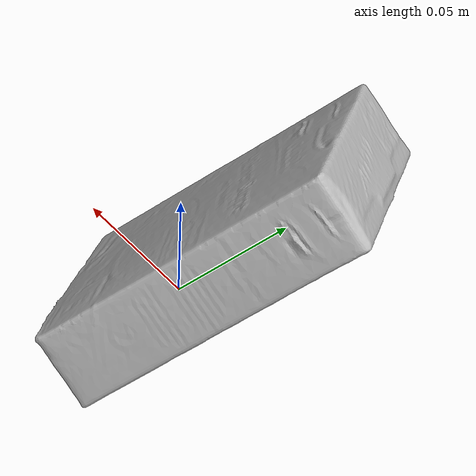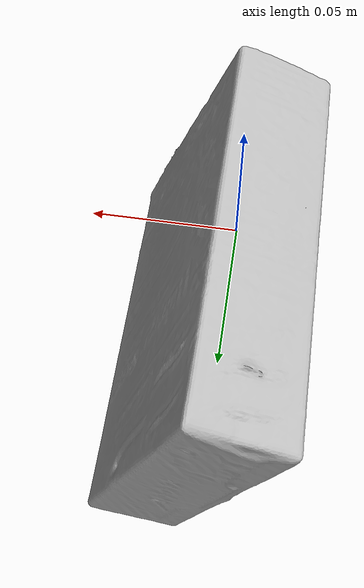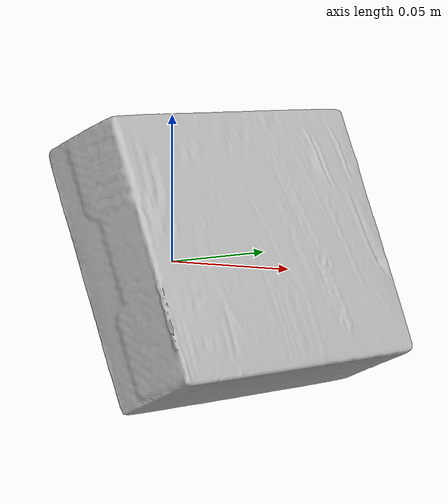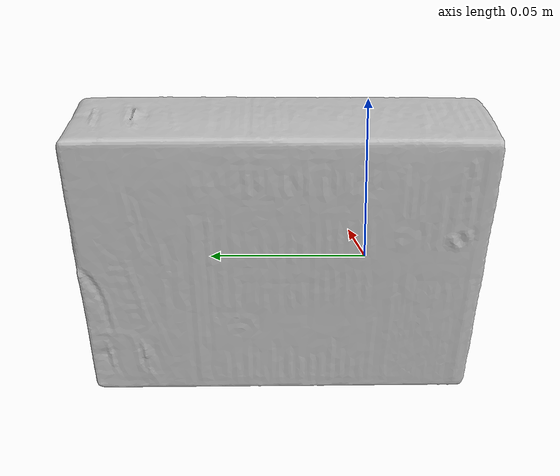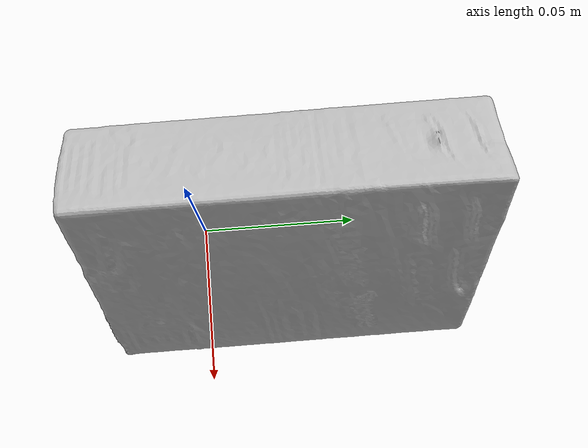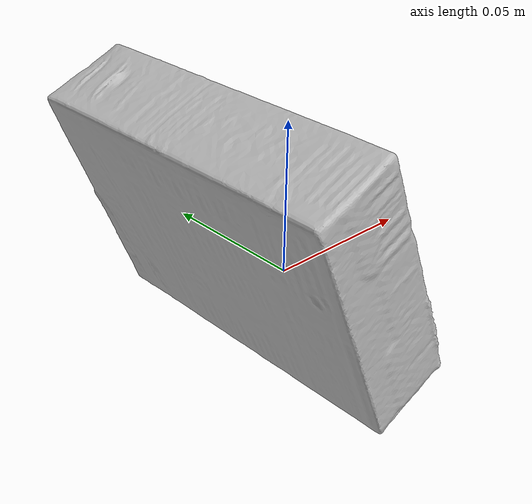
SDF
<?xml version='1.0'?>
<sdf version="1.4">
  <model name="InstantTomatoSoup">
    <static>false</static>
    <link name="link">
      <inertial>
        <pose>0.0065029447154148195 0.027825080024419767 0.0011914981296730464 1.570899751459066 0.3656413691072217 -3.136595713260401</pose>
        <mass>0.040574960359231055</mass>
        <inertia>
          <ixx>8.508754278763407e-05</ixx>
          <ixy>-4.1348543213358046e-21</ixy>
          <ixz>-1.7615571905514297e-21</ixz>
          <iyy>5.9135480720756274e-05</iyy>
          <iyz>2.671670800442811e-21</iyz>
          <izz>3.343905682021967e-05</izz>
        </inertia>
      </inertial>
      <collision name="collision">
        <geometry>
          <mesh>
            <!-- Use a downsampled mesh for collisions -->
            <uri>model:///InstantTomatoSoup/InstantTomatoSoup_250_collision.obj</uri>
	        </mesh>
        </geometry>
        <surface>
      </surface>
      </collision>
      <visual name="visual">
        <geometry>
          <mesh>
            <uri>model:///InstantTomatoSoup/InstantTomatoSoup_25k_tex.obj</uri>
	        </mesh>
        </geometry>
        <material>
          <script>
            <uri>model:///InstantTomatoSoup/InstantTomatoSoup.material</uri>
            <name>InstantTomatoSoup</name>
          </script>
        </material>
      </visual>
    </link>
  </model>
</sdf>
